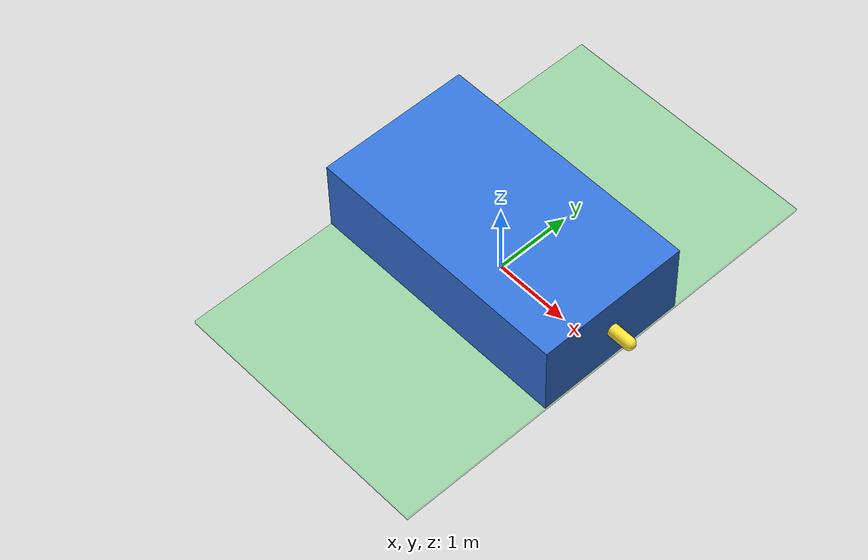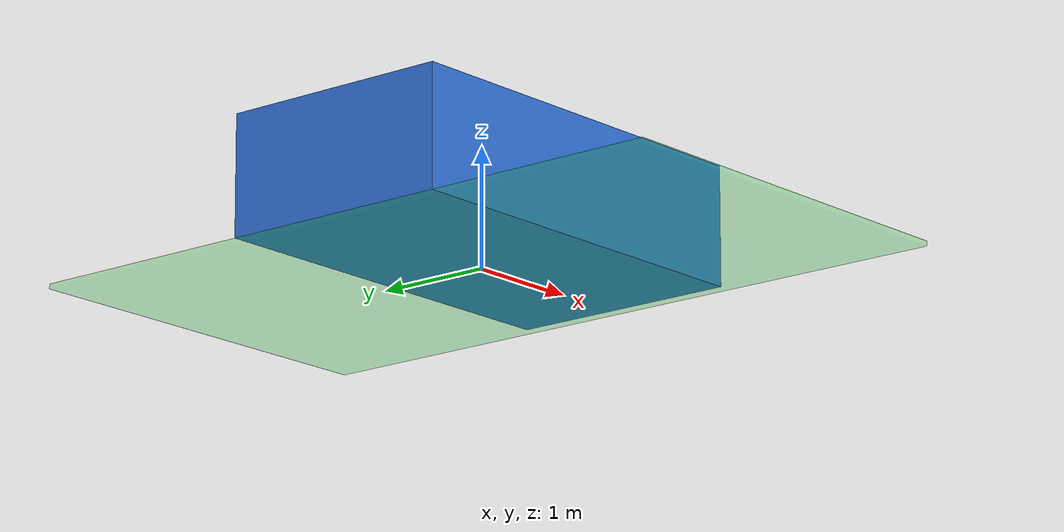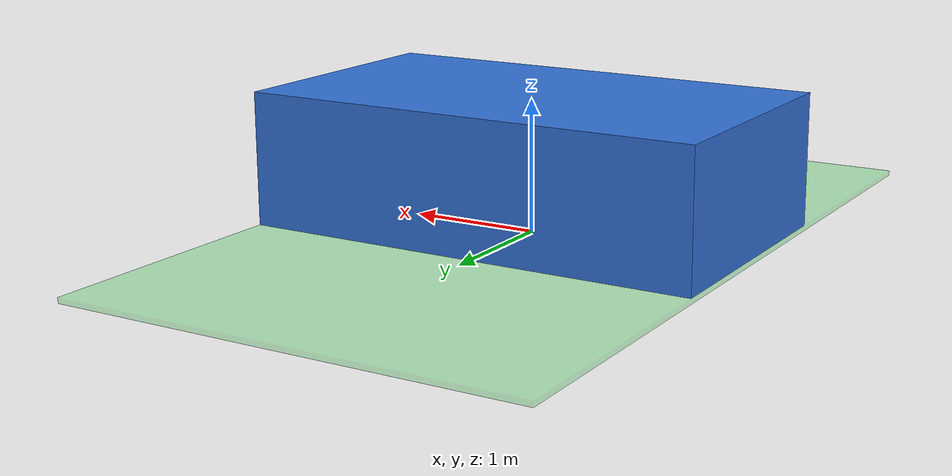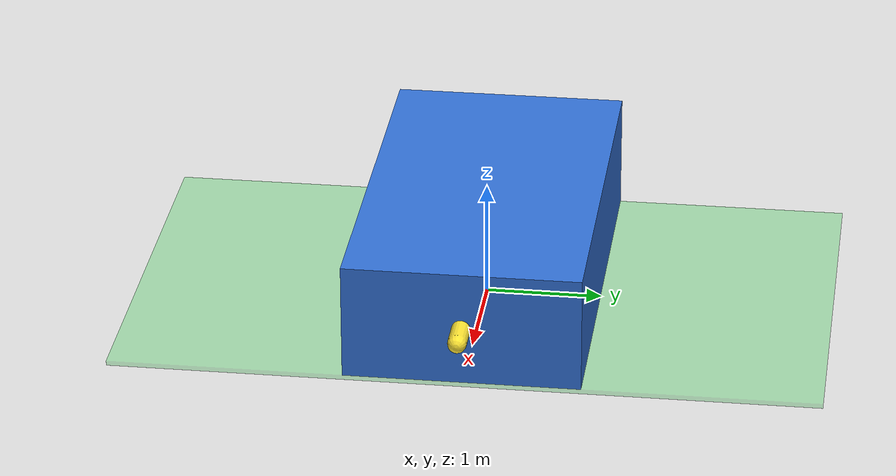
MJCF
<!-- Simplified agricultural vehicle for kinematic replay (mocap-driven). -->
<mujoco model="nr_ccp_tractor">
  <worldbody>
    <body name="tractor" mocap="true" pos="0 0 0.55">
      <!-- chassis: half-size box (MuJoCo size = half-extent) -->
      <geom name="chassis" type="box" size="1.75 1.0 0.5" rgba="0.20 0.45 0.85 1"/>
      <!-- swath footprint (non-colliding visual only) -->
      <geom
        name="swath"
        type="box"
        pos="0 0 -0.52"
        size="1.75 3.0 0.02"
        rgba="0.10 0.80 0.20 0.30"
        contype="0"
        conaffinity="0"
      />
      <!-- heading arrow -->
      <geom
        name="heading"
        type="capsule"
        fromto="0.5 0 0  2.0 0 0"
        size="0.08"
        rgba="1 0.9 0.2 1"
        contype="0"
        conaffinity="0"
      />
    </body>
  </worldbody>
</mujoco>
